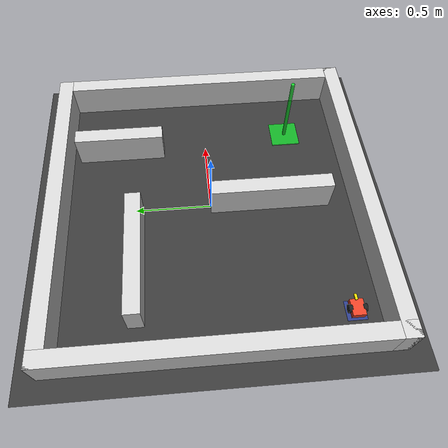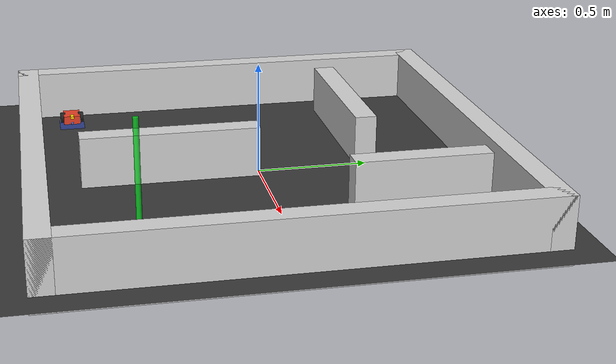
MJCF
<?xml version="1.0" ?>
<mujoco model="dmo_scene">
  <compiler angle="radian" inertiafromgeom="true" />
  <option timestep="0.001" gravity="0 0 -9.81" />

  <!-- ── Rendering quality ─────────────────────────────────────── -->
  <visual>
    <headlight ambient="0.35 0.35 0.35"
               diffuse="0.8 0.8 0.8"
               specular="0.2 0.2 0.2" />
    <rgba haze="0.12 0.18 0.24 1" />
    <quality shadowsize="4096" />
    <global offwidth="1280" offheight="720" />
  </visual>

  <!-- ── Materials ─────────────────────────────────────────────── -->
  <asset>
    <material name="floor"      rgba="0.22 0.22 0.22 1.0" />
    <material name="wall"       rgba="0.82 0.82 0.82 1.0" reflectance="0.1" />
    <material name="robot_body" rgba="0.90 0.25 0.15 1.0" />
    <material name="wheel"      rgba="0.12 0.12 0.12 1.0" />
    <material name="caster"     rgba="0.40 0.50 0.90 1.0" />
    <material name="goal"       rgba="0.05 0.90 0.15 0.70" />
    <material name="start"      rgba="0.15 0.30 0.95 0.45" />
    <material name="arrow"      rgba="1.00 0.85 0.00 1.0" />
  </asset>

  <worldbody>

    <!-- ── Lights ──────────────────────────────────────────────── -->
    <light name="sun"  pos="0 -1 5" dir="0 0.3 -1"
           diffuse="0.70 0.70 0.70" specular="0.30 0.30 0.30" castshadow="true" />
    <light name="fill" pos="1  2 3" dir="-0.3 -0.6 -1"
           diffuse="0.25 0.25 0.28" specular="0.0 0.0 0.0" castshadow="false" />

    <!-- ── Floor ───────────────────────────────────────────────── -->
    <geom name="floor" type="plane" size="5 5 0.1" pos="0 0 0" material="floor" />

    <!-- ── Outer maze walls ────────────────────────────────────── -->
    <geom name="wall_north" type="box" size="1.05 0.05 0.15" pos=" 0.0  1.0 0.075" material="wall" />
    <geom name="wall_south" type="box" size="1.05 0.05 0.15" pos=" 0.0 -1.0 0.075" material="wall" />
    <geom name="wall_east"  type="box" size="0.05 1.05 0.15" pos=" 1.0  0.0 0.075" material="wall" />
    <geom name="wall_west"  type="box" size="0.05 1.05 0.15" pos="-1.0  0.0 0.075" material="wall" />

    <!-- ── Internal walls (matches maze.xml) ───────────────────── -->
    <geom name="wall_v1" type="box" size="0.05 0.40 0.15" pos=" 0.0 -0.4 0.075" material="wall" />
    <geom name="wall_h1" type="box" size="0.40 0.05 0.15" pos="-0.4  0.5 0.075" material="wall" />
    <geom name="wall_v2" type="box" size="0.05 0.30 0.15" pos=" 0.5  0.6 0.075" material="wall" />

    <!-- ── Goal marker at maze(0.6, -0.6) = sim(0.8, 0.2) ─────── -->
    <geom name="goal_pad"  type="box" size="0.10 0.10 0.004" pos="0.6 -0.6 0.002" material="goal" />
    <geom name="goal_post" type="cylinder" size="0.012 0.25"  pos="0.6 -0.6 0.250" rgba="0.05 0.9 0.15 0.8" />

    <!-- ── Start marker at maze(-0.8, -0.8) = sim(0.1, 0.1) ───── -->
    <geom name="start_pad" type="box" size="0.06 0.06 0.003" pos="-0.8 -0.8 0.001" material="start" />

    <!-- ── Robot (free body — position set per-frame in Python) ── -->
    <body name="robot" pos="-0.8 -0.8 0.04">
      <joint name="root" type="free" />
      <inertial pos="0 0 0" mass="0.5" diaginertia="0.01 0.01 0.01" />

      <!-- Chassis -->
      <geom name="chassis" type="box" size="0.050 0.040 0.020" material="robot_body" />

      <!-- Forward-direction arrow (yellow nub on front) -->
      <geom name="nose" type="box" size="0.018 0.008 0.006"
            pos="0.060 0 0.022" material="arrow" />

      <!-- Left wheel -->
      <body name="left_wheel" pos="0 0.044 0">
        <inertial pos="0 0 0" mass="0.1" diaginertia="0.001 0.001 0.001" />
        <geom name="left_wheel_geom" type="cylinder" size="0.025"
              fromto="0 -0.012 0 0 0.012 0" material="wheel" />
        <joint name="left_wheel" type="hinge" axis="0 1 0" />
      </body>

      <!-- Right wheel -->
      <body name="right_wheel" pos="0 -0.044 0">
        <inertial pos="0 0 0" mass="0.1" diaginertia="0.001 0.001 0.001" />
        <geom name="right_wheel_geom" type="cylinder" size="0.025"
              fromto="0 -0.012 0 0 0.012 0" material="wheel" />
        <joint name="right_wheel" type="hinge" axis="0 1 0" />
      </body>

      <!-- Caster ball -->
      <body name="caster" pos="0.042 0 -0.014">
        <inertial pos="0 0 0" mass="0.05" diaginertia="0.0001 0.0001 0.0001" />
        <geom name="caster_geom" type="sphere" size="0.010" material="caster" />
        <joint name="caster_x" type="slide" axis="1 0 0" limited="false" />
        <joint name="caster_y" type="slide" axis="0 1 0" limited="false" />
        <joint name="caster_z" type="slide" axis="0 0 1" limited="false" />
      </body>
    </body>

  </worldbody>
</mujoco>
